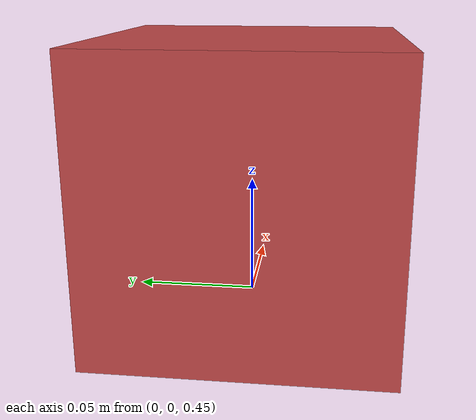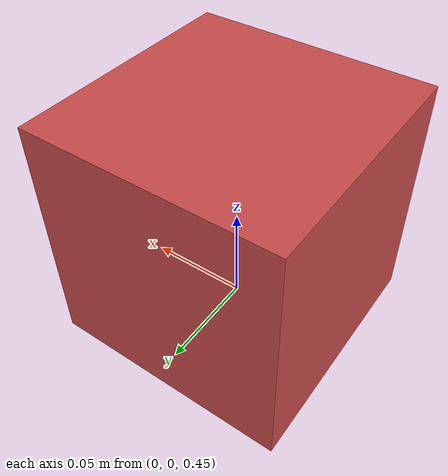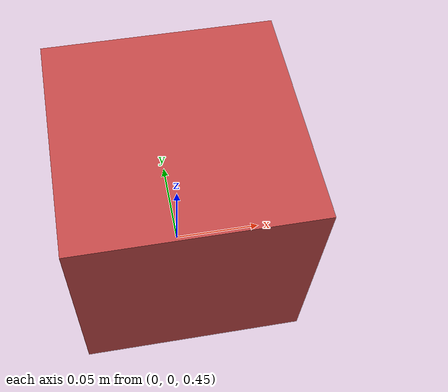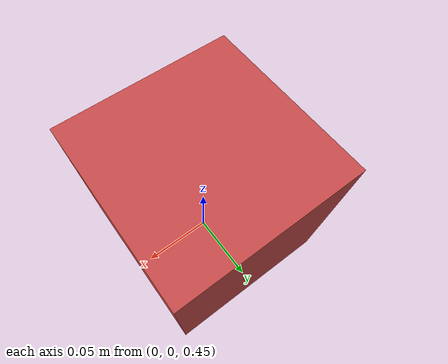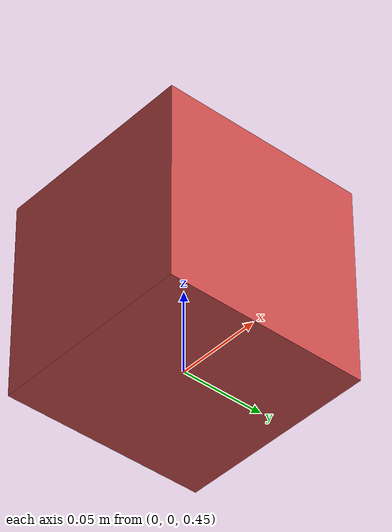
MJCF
<mujoco model="materials_texture">
  <compiler angle="degree"/>
  <asset>
    <texture name="grid" type="2d" builtin="checker" width="128" height="128"
             rgb1="0.1 0.2 0.3" rgb2="0.3 0.4 0.5"/>
    <texture name="sky" type="skybox" builtin="gradient" width="64" height="64"
             rgb1="0.6 0.7 0.9" rgb2="0.1 0.1 0.2"/>
    <material name="grid_mat" texture="grid" texrepeat="4 4" reflectance="0.2"
              specular="0.5" shininess="0.3"/>
    <material name="plain_mat" rgba="0.8 0.3 0.3 1" specular="0.9"/>
  </asset>
  <worldbody>
    <geom name="floor" type="plane" size="2 2 0.1" material="grid_mat"/>
    <body name="mt" pos="0 0 0.5">
      <freejoint/>
      <geom name="mt_g" type="box" size="0.06 0.06 0.06" material="plain_mat"/>
    </body>
  </worldbody>
</mujoco>
